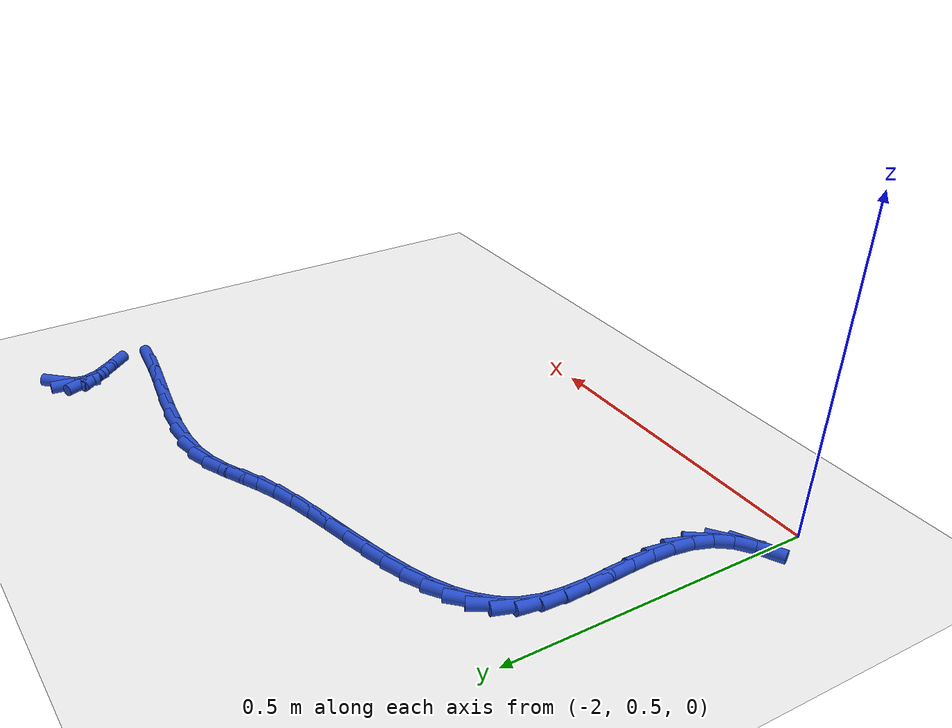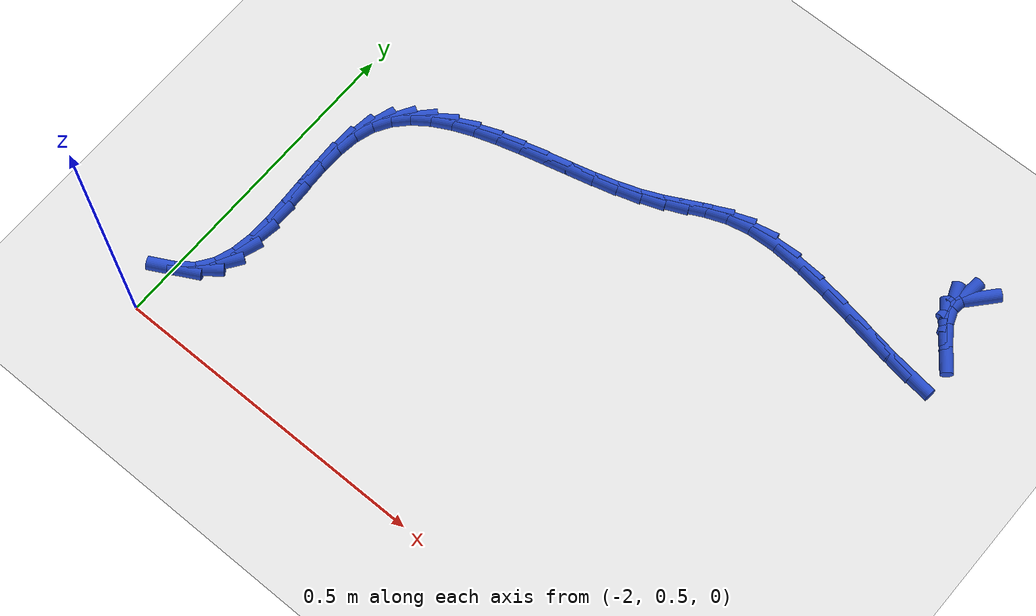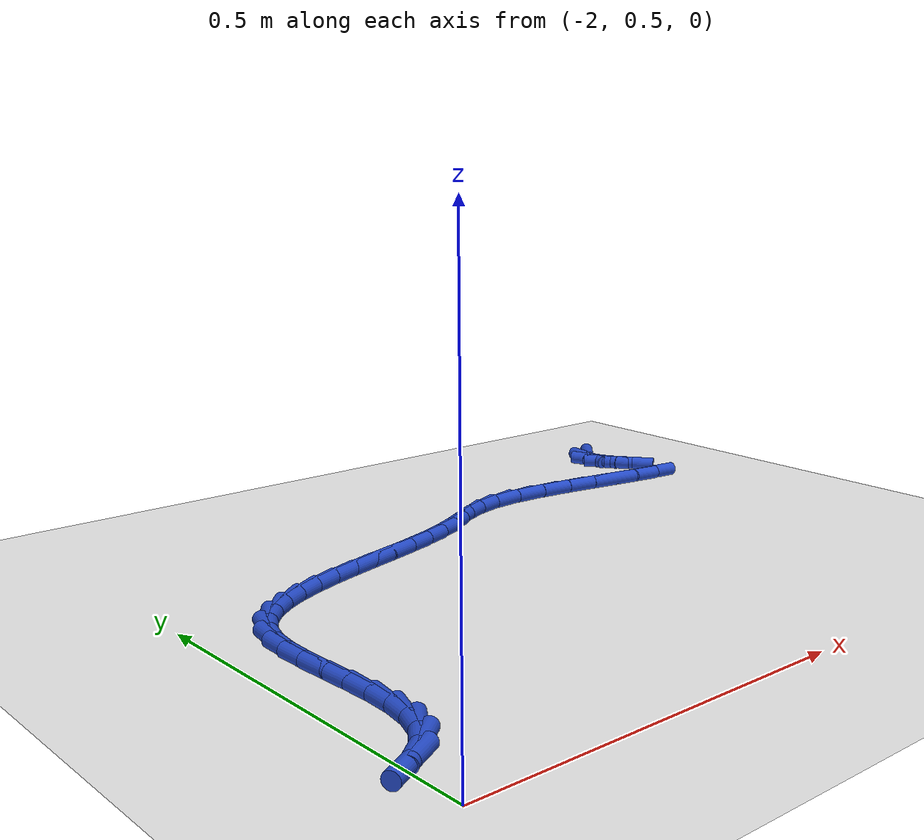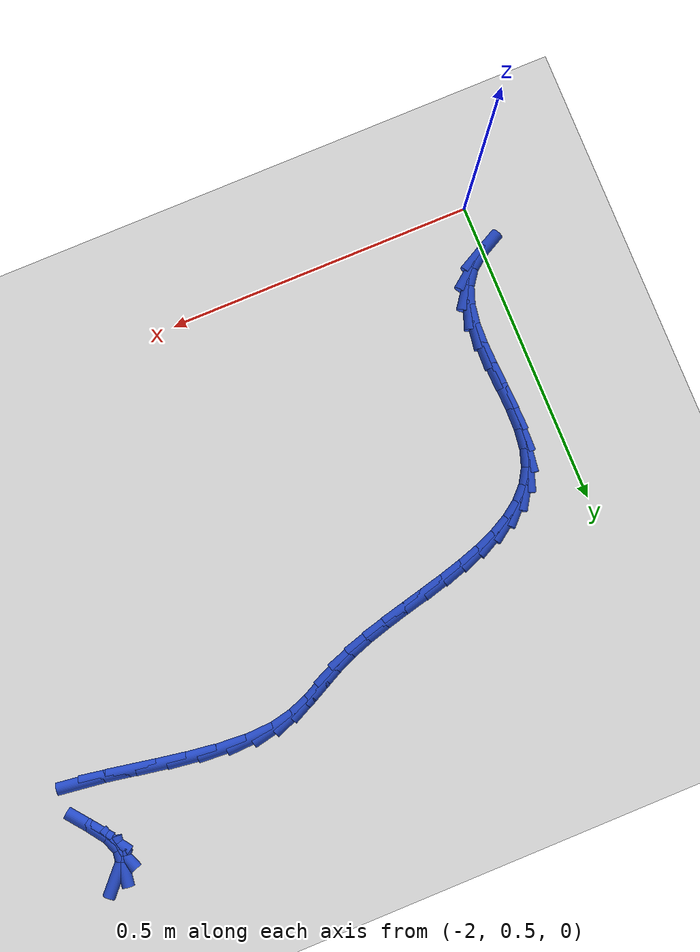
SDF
<sdf version="1.6">
 <world name="default">
  <model name="ground_plane">
   <static>1</static>
   <link name="link">
    <collision name="collision">
     <geometry><plane><normal>0 0 1</normal><size>100 100</size></plane></geometry>
     <surface><friction><ode><mu>100</mu><mu2>50</mu2></ode></friction></surface>
    </collision>
    <visual name="visual">
     <cast_shadows>0</cast_shadows>
     <geometry><plane><normal>0 0 1</normal><size>100 100</size></plane></geometry>
     <material>
      <script><uri>file://media/materials/scripts/gazebo.material</uri><name>Gazebo/WhiteGlow</name></script>
     </material>
    </visual>
   </link>
  </model>
  <model name="line">
   <link name="link_56">
    <pose>-1.102527234255598 1.2580894898648205 0.01 0 1.57 0.8389743264750044</pose>
    <collision name="collision">
     <geometry><cylinder><radius>0.01</radius><length>0.08</length></cylinder></geometry>
    </collision>
    <visual name="visual">
     <material>
      <script><name>Gazebo/Blue</name><uri>file://media/materials/scripts/gazebo.material</uri></script>
     </material>
     <geometry><cylinder><radius>0.01</radius><length>0.08</length></cylinder></geometry>
    </visual>
   </link>
   <link name="link_57">
    <pose>-1.1148339231865156 1.2443880504533482 0.01 0 1.57 1.4461950196633189</pose>
    <collision name="collision">
     <geometry><cylinder><radius>0.01</radius><length>0.08</length></cylinder></geometry>
    </collision>
    <visual name="visual">
     <material>
      <script><name>Gazebo/Blue</name><uri>file://media/materials/scripts/gazebo.material</uri></script>
     </material>
     <geometry><cylinder><radius>0.01</radius><length>0.08</length></cylinder></geometry>
    </visual>
   </link>
   <link name="link_58">
    <pose>-1.1171433968897193 1.2259491635201158 0.01 0 1.57 -1.20737013856195</pose>
    <collision name="collision">
     <geometry><cylinder><radius>0.01</radius><length>0.08</length></cylinder></geometry>
    </collision>
    <visual name="visual">
     <material>
      <script><name>Gazebo/Blue</name><uri>file://media/materials/scripts/gazebo.material</uri></script>
     </material>
     <geometry><cylinder><radius>0.01</radius><length>0.08</length></cylinder></geometry>
    </visual>
   </link>
   <link name="link_59">
    <pose>-1.1082597620914196 1.2025908182294125 0.01 0 1.57 -0.95328428460516</pose>
    <collision name="collision">
     <geometry><cylinder><radius>0.01</radius><length>0.08</length></cylinder></geometry>
    </collision>
    <visual name="visual">
     <material>
      <script><name>Gazebo/Blue</name><uri>file://media/materials/scripts/gazebo.material</uri></script>
     </material>
     <geometry><cylinder><radius>0.01</radius><length>0.08</length></cylinder></geometry>
    </visual>
   </link>
   <link name="link_60">
    <pose>-1.0885902472112672 1.1748935050328044 0.01 0 1.57 -0.9076793269784613</pose>
    <collision name="collision">
     <geometry><cylinder><radius>0.01</radius><length>0.08</length></cylinder></geometry>
    </collision>
    <visual name="visual">
     <material>
      <script><name>Gazebo/Blue</name><uri>file://media/materials/scripts/gazebo.material</uri></script>
     </material>
     <geometry><cylinder><radius>0.01</radius><length>0.08</length></cylinder></geometry>
    </visual>
   </link>
   <link name="link_65">
    <pose>-1.1030246500284233 1.1092583089656232 0.01 0 1.57 -0.12694163851758683</pose>
    <collision name="collision">
     <geometry><cylinder><radius>0.01</radius><length>0.08</length></cylinder></geometry>
    </collision>
    <visual name="visual">
     <material>
      <script><name>Gazebo/Blue</name><uri>file://media/materials/scripts/gazebo.material</uri></script>
     </material>
     <geometry><cylinder><radius>0.01</radius><length>0.08</length></cylinder></geometry>
    </visual>
   </link>
   <link name="link_66">
    <pose>-1.1386360192003497 1.1138033137928565 0.01 0 1.57 -0.17015800587254326</pose>
    <collision name="collision">
     <geometry><cylinder><radius>0.01</radius><length>0.08</length></cylinder></geometry>
    </collision>
    <visual name="visual">
     <material>
      <script><name>Gazebo/Blue</name><uri>file://media/materials/scripts/gazebo.material</uri></script>
     </material>
     <geometry><cylinder><radius>0.01</radius><length>0.08</length></cylinder></geometry>
    </visual>
   </link>
   <link name="link_67">
    <pose>-1.1805842598542908 1.1210108390357278 0.01 0 1.57 -0.17956099489898078</pose>
    <collision name="collision">
     <geometry><cylinder><radius>0.01</radius><length>0.08</length></cylinder></geometry>
    </collision>
    <visual name="visual">
     <material>
      <script><name>Gazebo/Blue</name><uri>file://media/materials/scripts/gazebo.material</uri></script>
     </material>
     <geometry><cylinder><radius>0.01</radius><length>0.08</length></cylinder></geometry>
    </visual>
   </link>
   <link name="link_68">
    <pose>-1.226690848063681 1.129379923580149 0.01 0 1.57 -0.1654578499686865</pose>
    <collision name="collision">
     <geometry><cylinder><radius>0.01</radius><length>0.08</length></cylinder></geometry>
    </collision>
    <visual name="visual">
     <material>
      <script><name>Gazebo/Blue</name><uri>file://media/materials/scripts/gazebo.material</uri></script>
     </material>
     <geometry><cylinder><radius>0.01</radius><length>0.08</length></cylinder></geometry>
    </visual>
   </link>
   <link name="link_69">
    <pose>-1.2747772599019567 1.1374096063120318 0.01 0 1.57 -0.12853396960763291</pose>
    <collision name="collision">
     <geometry><cylinder><radius>0.01</radius><length>0.08</length></cylinder></geometry>
    </collision>
    <visual name="visual">
     <material>
      <script><name>Gazebo/Blue</name><uri>file://media/materials/scripts/gazebo.material</uri></script>
     </material>
     <geometry><cylinder><radius>0.01</radius><length>0.08</length></cylinder></geometry>
    </visual>
   </link>
   <link name="link_70">
    <pose>-1.3226649714425522 1.1435989261172876 0.01 0 1.57 -0.06249739231489665</pose>
    <collision name="collision">
     <geometry><cylinder><radius>0.01</radius><length>0.08</length></cylinder></geometry>
    </collision>
    <visual name="visual">
     <material>
      <script><name>Gazebo/Blue</name><uri>file://media/materials/scripts/gazebo.material</uri></script>
     </material>
     <geometry><cylinder><radius>0.01</radius><length>0.08</length></cylinder></geometry>
    </visual>
   </link>
   <link name="link_71">
    <pose>-1.3681754587589028 1.1464469218818283 0.01 0 1.57 0.04865039460981025</pose>
    <collision name="collision">
     <geometry><cylinder><radius>0.01</radius><length>0.08</length></cylinder></geometry>
    </collision>
    <visual name="visual">
     <material>
      <script><name>Gazebo/Blue</name><uri>file://media/materials/scripts/gazebo.material</uri></script>
     </material>
     <geometry><cylinder><radius>0.01</radius><length>0.08</length></cylinder></geometry>
    </visual>
   </link>
   <link name="link_72">
    <pose>-1.4091305010217707 1.1444528694512763 0.01 0 1.57 0.21427217446010619</pose>
    <collision name="collision">
     <geometry><cylinder><radius>0.01</radius><length>0.08</length></cylinder></geometry>
    </collision>
    <visual name="visual">
     <material>
      <script><name>Gazebo/Blue</name><uri>file://media/materials/scripts/gazebo.material</uri></script>
     </material>
     <geometry><cylinder><radius>0.01</radius><length>0.08</length></cylinder></geometry>
    </visual>
   </link>
   <link name="link_73">
    <pose>-1.444242220676792 1.136812109814682 0.01 0 1.57 0.3674422142821818</pose>
    <collision name="collision">
     <geometry><cylinder><radius>0.01</radius><length>0.08</length></cylinder></geometry>
    </collision>
    <visual name="visual">
     <material>
      <script><name>Gazebo/Blue</name><uri>file://media/materials/scripts/gazebo.material</uri></script>
     </material>
     <geometry><cylinder><radius>0.01</radius><length>0.08</length></cylinder></geometry>
    </visual>
   </link>
   <link name="link_74">
    <pose>-1.4750698441633898 1.1249458331427764 0.01 0 1.57 0.46060985874239235</pose>
    <collision name="collision">
     <geometry><cylinder><radius>0.01</radius><length>0.08</length></cylinder></geometry>
    </collision>
    <visual name="visual">
     <material>
      <script><name>Gazebo/Blue</name><uri>file://media/materials/scripts/gazebo.material</uri></script>
     </material>
     <geometry><cylinder><radius>0.01</radius><length>0.08</length></cylinder></geometry>
    </visual>
   </link>
   <link name="link_75">
    <pose>-1.503740497027538 1.1107192097925966 0.01 0 1.57 0.4747965009025702</pose>
    <collision name="collision">
     <geometry><cylinder><radius>0.01</radius><length>0.08</length></cylinder></geometry>
    </collision>
    <visual name="visual">
     <material>
      <script><name>Gazebo/Blue</name><uri>file://media/materials/scripts/gazebo.material</uri></script>
     </material>
     <geometry><cylinder><radius>0.01</radius><length>0.08</length></cylinder></geometry>
    </visual>
   </link>
   <link name="link_76">
    <pose>-1.5323813048152115 1.0959974101211807 0.01 0 1.57 0.4129940715328496</pose>
    <collision name="collision">
     <geometry><cylinder><radius>0.01</radius><length>0.08</length></cylinder></geometry>
    </collision>
    <visual name="visual">
     <material>
      <script><name>Gazebo/Blue</name><uri>file://media/materials/scripts/gazebo.material</uri></script>
     </material>
     <geometry><cylinder><radius>0.01</radius><length>0.08</length></cylinder></geometry>
    </visual>
   </link>
   <link name="link_77">
    <pose>-1.5630272966367553 1.0825684738595795 0.01 0 1.57 0.33619033678859866</pose>
    <collision name="collision">
     <geometry><cylinder><radius>0.01</radius><length>0.08</length></cylinder></geometry>
    </collision>
    <visual name="visual">
     <material>
      <script><name>Gazebo/Blue</name><uri>file://media/materials/scripts/gazebo.material</uri></script>
     </material>
     <geometry><cylinder><radius>0.01</radius><length>0.08</length></cylinder></geometry>
    </visual>
   </link>
   <link name="link_78">
    <pose>-1.5962195286002199 1.0709692406018911 0.01 0 1.57 0.28432395723799053</pose>
    <collision name="collision">
     <geometry><cylinder><radius>0.01</radius><length>0.08</length></cylinder></geometry>
    </collision>
    <visual name="visual">
     <material>
      <script><name>Gazebo/Blue</name><uri>file://media/materials/scripts/gazebo.material</uri></script>
     </material>
     <geometry><cylinder><radius>0.01</radius><length>0.08</length></cylinder></geometry>
    </visual>
   </link>
   <link name="link_79">
    <pose>-1.6312866545635019 1.0607211648856543 0.01 0 1.57 0.25394183436925727</pose>
    <collision name="collision">
     <geometry><cylinder><radius>0.01</radius><length>0.08</length></cylinder></geometry>
    </collision>
    <visual name="visual">
     <material>
      <script><name>Gazebo/Blue</name><uri>file://media/materials/scripts/gazebo.material</uri></script>
     </material>
     <geometry><cylinder><radius>0.01</radius><length>0.08</length></cylinder></geometry>
    </visual>
   </link>
   <link name="link_80">
    <pose>-1.667522317113366 1.0513163793616196 0.01 0 1.57 0.24228144760254527</pose>
    <collision name="collision">
     <geometry><cylinder><radius>0.01</radius><length>0.08</length></cylinder></geometry>
    </collision>
    <visual name="visual">
     <material>
      <script><name>Gazebo/Blue</name><uri>file://media/materials/scripts/gazebo.material</uri></script>
     </material>
     <geometry><cylinder><radius>0.01</radius><length>0.08</length></cylinder></geometry>
    </visual>
   </link>
   <link name="link_81">
    <pose>-1.7042201588365764 1.0422470166805378 0.01 0 1.57 0.24829076882393852</pose>
    <collision name="collision">
     <geometry><cylinder><radius>0.01</radius><length>0.08</length></cylinder></geometry>
    </collision>
    <visual name="visual">
     <material>
      <script><name>Gazebo/Blue</name><uri>file://media/materials/scripts/gazebo.material</uri></script>
     </material>
     <geometry><cylinder><radius>0.01</radius><length>0.08</length></cylinder></geometry>
    </visual>
   </link>
   <link name="link_82">
    <pose>-1.740673822319896 1.0330052094931599 0.01 0 1.57 0.27251873180411257</pose>
    <collision name="collision">
     <geometry><cylinder><radius>0.01</radius><length>0.08</length></cylinder></geometry>
    </collision>
    <visual name="visual">
     <material>
      <script><name>Gazebo/Blue</name><uri>file://media/materials/scripts/gazebo.material</uri></script>
     </material>
     <geometry><cylinder><radius>0.01</radius><length>0.08</length></cylinder></geometry>
    </visual>
   </link>
   <link name="link_83">
    <pose>-1.7761769501500901 1.023083090450236 0.01 0 1.57 0.31717584521990744</pose>
    <collision name="collision">
     <geometry><cylinder><radius>0.01</radius><length>0.08</length></cylinder></geometry>
    </collision>
    <visual name="visual">
     <material>
      <script><name>Gazebo/Blue</name><uri>file://media/materials/scripts/gazebo.material</uri></script>
     </material>
     <geometry><cylinder><radius>0.01</radius><length>0.08</length></cylinder></geometry>
    </visual>
   </link>
   <link name="link_84">
    <pose>-1.8100231849139226 1.0119727922025175 0.01 0 1.57 0.38632923296074906</pose>
    <collision name="collision">
     <geometry><cylinder><radius>0.01</radius><length>0.08</length></cylinder></geometry>
    </collision>
    <visual name="visual">
     <material>
      <script><name>Gazebo/Blue</name><uri>file://media/materials/scripts/gazebo.material</uri></script>
     </material>
     <geometry><cylinder><radius>0.01</radius><length>0.08</length></cylinder></geometry>
    </visual>
   </link>
   <link name="link_85">
    <pose>-1.841506169198158 0.9991664474007549 0.01 0 1.57 0.48601592495210416</pose>
    <collision name="collision">
     <geometry><cylinder><radius>0.01</radius><length>0.08</length></cylinder></geometry>
    </collision>
    <visual name="visual">
     <material>
      <script><name>Gazebo/Blue</name><uri>file://media/materials/scripts/gazebo.material</uri></script>
     </material>
     <geometry><cylinder><radius>0.01</radius><length>0.08</length></cylinder></geometry>
    </visual>
   </link>
   <link name="link_86">
    <pose>-1.8699195455895585 0.9841561886956983 0.01 0 1.57 0.6235712548043756</pose>
    <collision name="collision">
     <geometry><cylinder><radius>0.01</radius><length>0.08</length></cylinder></geometry>
    </collision>
    <visual name="visual">
     <material>
      <script><name>Gazebo/Blue</name><uri>file://media/materials/scripts/gazebo.material</uri></script>
     </material>
     <geometry><cylinder><radius>0.01</radius><length>0.08</length></cylinder></geometry>
    </visual>
   </link>
   <link name="link_87">
    <pose>-1.89455695667489 0.9664341487380996 0.01 0 1.57 0.8045360184099977</pose>
    <collision name="collision">
     <geometry><cylinder><radius>0.01</radius><length>0.08</length></cylinder></geometry>
    </collision>
    <visual name="visual">
     <material>
      <script><name>Gazebo/Blue</name><uri>file://media/materials/scripts/gazebo.material</uri></script>
     </material>
     <geometry><cylinder><radius>0.01</radius><length>0.08</length></cylinder></geometry>
    </visual>
   </link>
   <link name="link_88">
    <pose>-1.9147120450409156 0.9454924601787088 0.01 0 1.57 1.0254767116556698</pose>
    <collision name="collision">
     <geometry><cylinder><radius>0.01</radius><length>0.08</length></cylinder></geometry>
    </collision>
    <visual name="visual">
     <material>
      <script><name>Gazebo/Blue</name><uri>file://media/materials/scripts/gazebo.material</uri></script>
     </material>
     <geometry><cylinder><radius>0.01</radius><length>0.08</length></cylinder></geometry>
    </visual>
   </link>
   <link name="link_89">
    <pose>-1.929678453274401 0.9208232556682767 0.01 0 1.57 1.261403070834</pose>
    <collision name="collision">
     <geometry><cylinder><radius>0.01</radius><length>0.08</length></cylinder></geometry>
    </collision>
    <visual name="visual">
     <material>
      <script><name>Gazebo/Blue</name><uri>file://media/materials/scripts/gazebo.material</uri></script>
     </material>
     <geometry><cylinder><radius>0.01</radius><length>0.08</length></cylinder></geometry>
    </visual>
   </link>
   <link name="link_90">
    <pose>-1.938886736688852 0.8920166399219991 0.01 0 1.57 1.4423496934152455</pose>
    <collision name="collision">
     <geometry><cylinder><radius>0.01</radius><length>0.08</length></cylinder></geometry>
    </collision>
    <visual name="visual">
     <material>
      <script><name>Gazebo/Blue</name><uri>file://media/materials/scripts/gazebo.material</uri></script>
     </material>
     <geometry><cylinder><radius>0.01</radius><length>0.08</length></cylinder></geometry>
    </visual>
   </link>
   <link name="link_91">
    <pose>-1.943073906983678 0.8595975922447274 0.01 0 1.57 1.552856844097132</pose>
    <collision name="collision">
     <geometry><cylinder><radius>0.01</radius><length>0.08</length></cylinder></geometry>
    </collision>
    <visual name="visual">
     <material>
      <script><name>Gazebo/Blue</name><uri>file://media/materials/scripts/gazebo.material</uri></script>
     </material>
     <geometry><cylinder><radius>0.01</radius><length>0.08</length></cylinder></geometry>
    </visual>
   </link>
   <link name="link_92">
    <pose>-1.9437016399568885 0.8246096473704347 0.01 0 1.57 -1.5307632119954773</pose>
    <collision name="collision">
     <geometry><cylinder><radius>0.01</radius><length>0.08</length></cylinder></geometry>
    </collision>
    <visual name="visual">
     <material>
      <script><name>Gazebo/Blue</name><uri>file://media/materials/scripts/gazebo.material</uri></script>
     </material>
     <geometry><cylinder><radius>0.01</radius><length>0.08</length></cylinder></geometry>
    </visual>
   </link>
   <link name="link_93">
    <pose>-1.9422393386241157 0.7881018694786094 0.01 0 1.57 -1.5145276510093602</pose>
    <collision name="collision">
     <geometry><cylinder><radius>0.01</radius><length>0.08</length></cylinder></geometry>
    </collision>
    <visual name="visual">
     <material>
      <script><name>Gazebo/Blue</name><uri>file://media/materials/scripts/gazebo.material</uri></script>
     </material>
     <geometry><cylinder><radius>0.01</radius><length>0.08</length></cylinder></geometry>
    </visual>
   </link>
   <link name="link_94">
    <pose>-1.940156406000992 0.7511233227487409 0.01 0 1.57 -1.5369040249763273</pose>
    <collision name="collision">
     <geometry><cylinder><radius>0.01</radius><length>0.08</length></cylinder></geometry>
    </collision>
    <visual name="visual">
     <material>
      <script><name>Gazebo/Blue</name><uri>file://media/materials/scripts/gazebo.material</uri></script>
     </material>
     <geometry><cylinder><radius>0.01</radius><length>0.08</length></cylinder></geometry>
    </visual>
   </link>
   <link name="link_95">
    <pose>-1.9389222451031503 0.7147230713603177 0.01 0 1.57 1.5396323127522598</pose>
    <collision name="collision">
     <geometry><cylinder><radius>0.01</radius><length>0.08</length></cylinder></geometry>
    </collision>
    <visual name="visual">
     <material>
      <script><name>Gazebo/Blue</name><uri>file://media/materials/scripts/gazebo.material</uri></script>
     </material>
     <geometry><cylinder><radius>0.01</radius><length>0.08</length></cylinder></geometry>
    </visual>
   </link>
   <link name="link_96">
    <pose>-1.9400062589462221 0.6799501794928275 0.01 0 1.57 1.420166318964315</pose>
    <collision name="collision">
     <geometry><cylinder><radius>0.01</radius><length>0.08</length></cylinder></geometry>
    </collision>
    <visual name="visual">
     <material>
      <script><name>Gazebo/Blue</name><uri>file://media/materials/scripts/gazebo.material</uri></script>
     </material>
     <geometry><cylinder><radius>0.01</radius><length>0.08</length></cylinder></geometry>
    </visual>
   </link>
   <link name="link_97">
    <pose>-1.9448778505458413 0.6478537113257605 0.01 0 1.57 1.2278949494520641</pose>
    <collision name="collision">
     <geometry><cylinder><radius>0.01</radius><length>0.08</length></cylinder></geometry>
    </collision>
    <visual name="visual">
     <material>
      <script><name>Gazebo/Blue</name><uri>file://media/materials/scripts/gazebo.material</uri></script>
     </material>
     <geometry><cylinder><radius>0.01</radius><length>0.08</length></cylinder></geometry>
    </visual>
   </link>
   <link name="link_98">
    <pose>-1.9550064229176383 0.6194827310386043 0.01 0 1.57 0.9510970857771142</pose>
    <collision name="collision">
     <geometry><cylinder><radius>0.01</radius><length>0.08</length></cylinder></geometry>
    </collision>
    <visual name="visual">
     <material>
      <script><name>Gazebo/Blue</name><uri>file://media/materials/scripts/gazebo.material</uri></script>
     </material>
     <geometry><cylinder><radius>0.01</radius><length>0.08</length></cylinder></geometry>
    </visual>
   </link>
   <link name="link_99">
    <pose>-1.9718484166333192 0.5958764877084869 0.01 0 1.57 0.6658389643968021</pose>
    <collision name="collision">
     <geometry><cylinder><radius>0.01</radius><length>0.08</length></cylinder></geometry>
    </collision>
    <visual name="visual">
     <material>
      <script><name>Gazebo/Blue</name><uri>file://media/materials/scripts/gazebo.material</uri></script>
     </material>
     <geometry><cylinder><radius>0.01</radius><length>0.08</length></cylinder></geometry>
    </visual>
   </link>
   <link name="link_100">
    <pose>-1.9956645460404638 0.5771688320670363 0.01 0 1.57 0.4867886781279878</pose>
    <collision name="collision">
     <geometry><cylinder><radius>0.01</radius><length>0.08</length></cylinder></geometry>
    </collision>
    <visual name="visual">
     <material>
      <script><name>Gazebo/Blue</name><uri>file://media/materials/scripts/gazebo.material</uri></script>
     </material>
     <geometry><cylinder><radius>0.01</radius><length>0.08</length></cylinder></geometry>
    </visual>
   </link>
  </model>
 </world>
</sdf>
